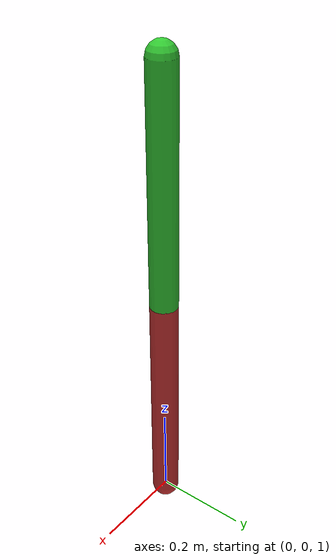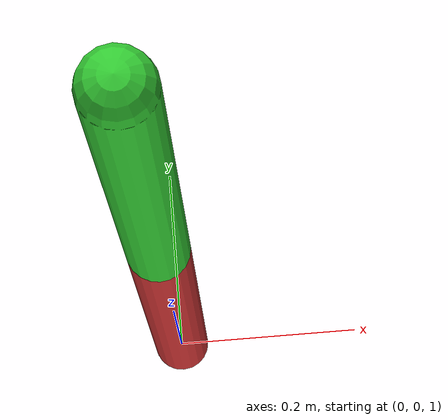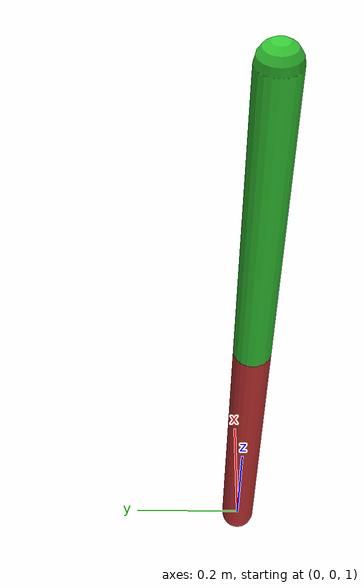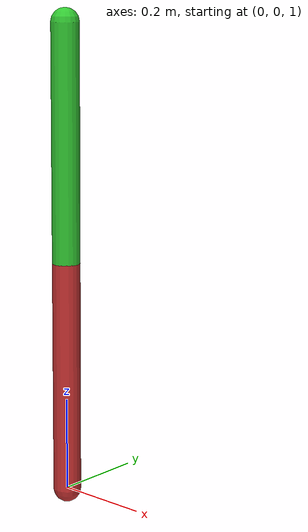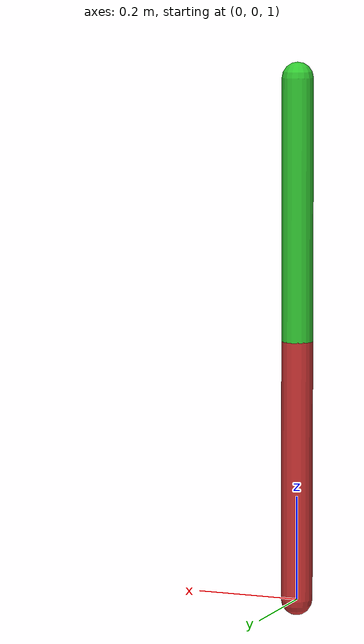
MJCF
<mujoco model="double_inverted_pendulum">
  <option gravity="0 0 -9.81" timestep="0.01" integrator="RK4"/>

  <worldbody>
    <light name="light" pos="0 0 3"/>
    <body name="base" pos="0 0 1">
      <joint name="theta1" type="hinge" axis="0 1 0" damping="0.1" limited="true" range="-3.14 3.14"/>
      <geom type="capsule" fromto="0 0 0 0 0 0.5" size="0.03" mass="1" rgba="0.8 0.2 0.2 1"/>

      <body name="link2" pos="0 0 0.5">
        <joint name="theta2" type="hinge" axis="0 1 0" damping="0.1" limited="true" range="-3.14 3.14"/>
        <geom type="capsule" fromto="0 0 0 0 0 0.5" size="0.03" mass="1" rgba="0.2 0.8 0.2 1"/>
      </body>
    </body>
  </worldbody>

  <actuator>
    <motor name="tau1" joint="theta1" ctrlrange="-10 10" gear="1"/>
    <motor name="tau2" joint="theta2" ctrlrange="-10 10" gear="1"/>
  </actuator>
</mujoco>
